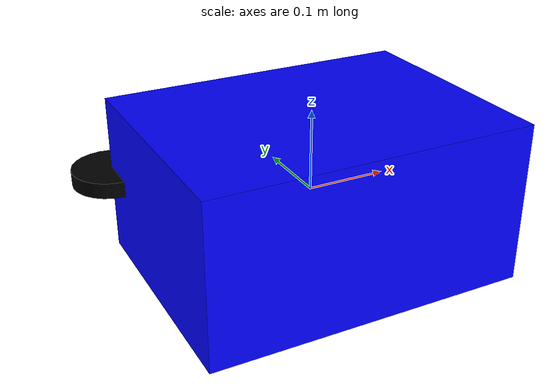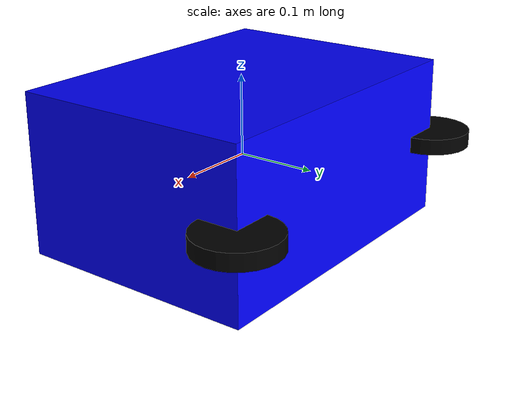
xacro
<?xml version="1.0"?>
<robot name="diffbot" xmlns:xacro="http://www.ros.org/wiki/xacro">

    <!-- Base Link -->
    <link name="base_link">
        <visual>
            <geometry>
                <box size="0.4 0.3 0.2"/>
            </geometry>
            <material name="blue">
                <color rgba="0 0 1 1"/>
            </material>
        </visual>
    </link>

    <!-- Wheels -->
    <joint name="left_wheel_joint" type="continuous">
        <parent link="base_link"/>
        <child link="left_wheel"/>
        <origin xyz="-0.2 0.15 0"/>
        <axis xyz="0 1 0"/>
    </joint>

    <joint name="right_wheel_joint" type="continuous">
        <parent link="base_link"/>
        <child link="right_wheel"/>
        <origin xyz="0.2 0.15 0"/>
        <axis xyz="0 1 0"/>
    </joint>

    <link name="left_wheel">
        <visual>
            <geometry>
                <cylinder length="0.02" radius="0.05"/>
            </geometry>
            <material name="black">
                <color rgba="0 0 0 1"/>
            </material>
        </visual>
    </link>

    <link name="right_wheel">
        <visual>
            <geometry>
                <cylinder length="0.02" radius="0.05"/>
            </geometry>
            <material name="black">
                <color rgba="0 0 0 1"/>
            </material>
        </visual>
    </link>

</robot>
